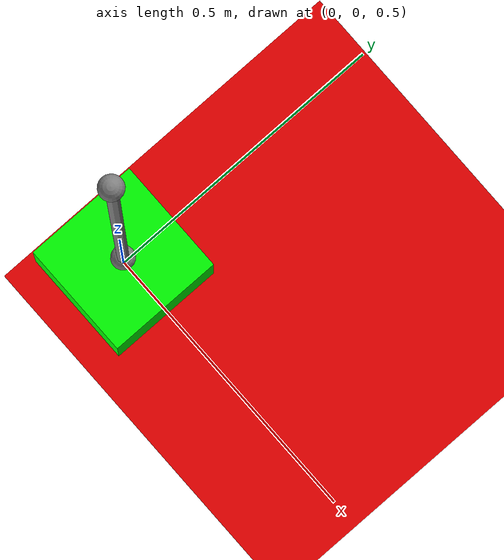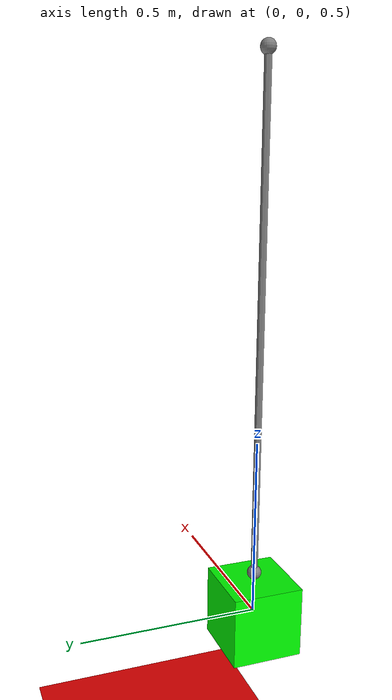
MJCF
<mujoco>
    <option timestep="0.0001">
		<flag gravity="enable"/>
    </option>

    <worldbody>
        <light diffuse=".5 .5 .5" pos="0 0 3" dir="0 0 -1"/>
        <geom type="plane" size="1 1 0.1" rgba=".9 0 0 1"/>
        <site name="s0" pos="0 0 2" size="0.02"/>
        <body pos="0 0 0.5" euler="0 0 0">
            <joint name="mSlide" type="slide" axis="0 0 1" pos="0 0 3" range="-2 2"/>
            <geom  type="box" size="0.1 0.1 0.1" rgba="0 1 0 1" mass="1"/>
            <site name="s1" pos="0 0 0.12" size="0.02"/>
        </body>
    </worldbody>

    <tendon>
        <spatial name="mTendon" width="0.01">
            <site site="s0"/>
            <site site="s1"/>
        </spatial>
    </tendon>

    <actuator>
        <muscle name="mMuscle" tendon="mTendon" lengthrange="0 2" ctrlrange="-2 2"/>
    </actuator>
</mujoco>
